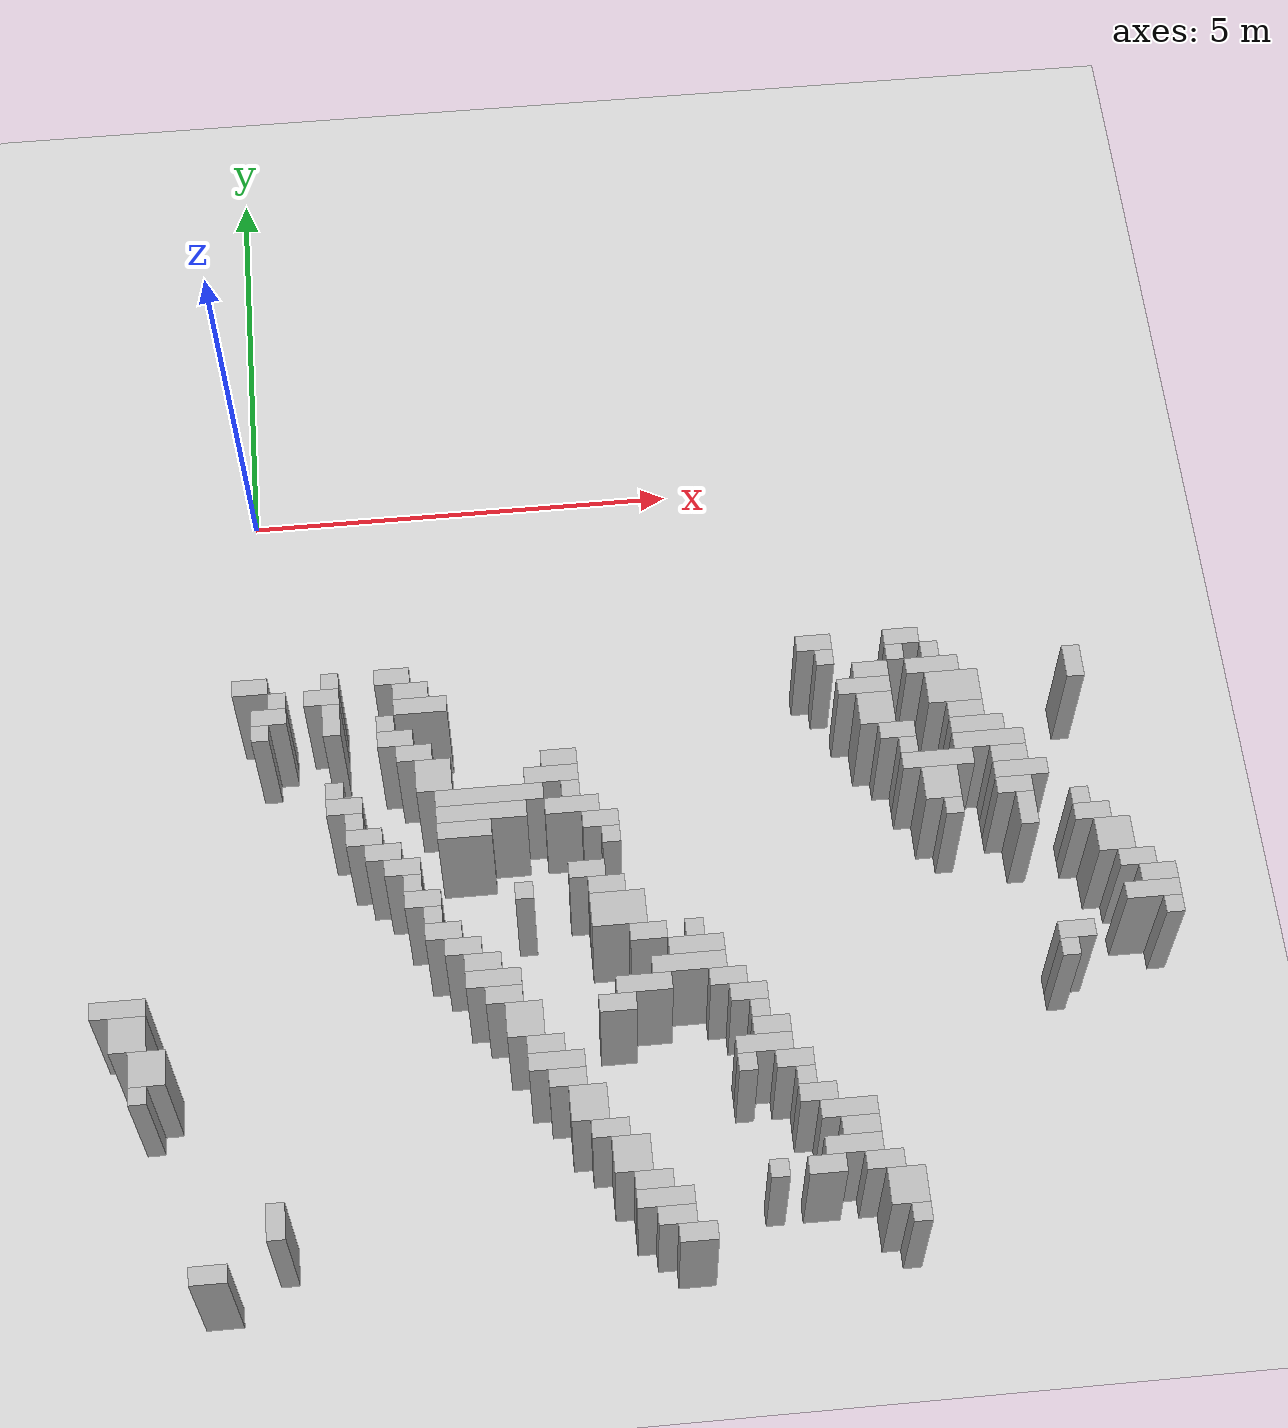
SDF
<sdf version="1.6">
 <world name="real_map">
  <include><uri>model://sun</uri></include>
  <include><uri>model://ground_plane</uri></include>
  <model name="w35">
   <static>true</static>
   <pose>0.90 -3.10 0.8 0 0 0</pose>
   <link name="l">
    <collision name="c"><geometry><box><size>0.20 0.20 1.5</size></box></geometry></collision>
    <visual name="v">
     <geometry><box><size>0.20 0.20 1.5</size></box></geometry>
     <material><ambient>0.7 0.7 0.7 1</ambient></material>
    </visual>
   </link>
  </model>
  <model name="w39">
   <static>true</static>
   <pose>1.60 -3.10 0.8 0 0 0</pose>
   <link name="l">
    <collision name="c"><geometry><box><size>0.40 0.20 1.5</size></box></geometry></collision>
    <visual name="v">
     <geometry><box><size>0.40 0.20 1.5</size></box></geometry>
     <material><ambient>0.7 0.7 0.7 1</ambient></material>
    </visual>
   </link>
  </model>
  <model name="w40">
   <static>true</static>
   <pose>7.00 -3.50 0.8 0 0 0</pose>
   <link name="l">
    <collision name="c"><geometry><box><size>0.40 0.20 1.5</size></box></geometry></collision>
    <visual name="v">
     <geometry><box><size>0.40 0.20 1.5</size></box></geometry>
     <material><ambient>0.7 0.7 0.7 1</ambient></material>
    </visual>
   </link>
  </model>
  <model name="w41">
   <static>true</static>
   <pose>1.80 -3.30 0.8 0 0 0</pose>
   <link name="l">
    <collision name="c"><geometry><box><size>0.40 0.20 1.5</size></box></geometry></collision>
    <visual name="v">
     <geometry><box><size>0.40 0.20 1.5</size></box></geometry>
     <material><ambient>0.7 0.7 0.7 1</ambient></material>
    </visual>
   </link>
  </model>
  <model name="w44">
   <static>true</static>
   <pose>0.90 -3.60 0.8 0 0 0</pose>
   <link name="l">
    <collision name="c"><geometry><box><size>0.20 0.40 1.5</size></box></geometry></collision>
    <visual name="v">
     <geometry><box><size>0.20 0.40 1.5</size></box></geometry>
     <material><ambient>0.7 0.7 0.7 1</ambient></material>
    </visual>
   </link>
  </model>
  <model name="w45">
   <static>true</static>
   <pose>7.30 -3.30 0.8 0 0 0</pose>
   <link name="l">
    <collision name="c"><geometry><box><size>0.20 0.20 1.5</size></box></geometry></collision>
    <visual name="v">
     <geometry><box><size>0.20 0.20 1.5</size></box></geometry>
     <material><ambient>0.7 0.7 0.7 1</ambient></material>
    </visual>
   </link>
  </model>
  <model name="w56">
   <static>true</static>
   <pose>8.40 -4.70 0.8 0 0 0</pose>
   <link name="l">
    <collision name="c"><geometry><box><size>0.40 0.20 1.5</size></box></geometry></collision>
    <visual name="v">
     <geometry><box><size>0.40 0.20 1.5</size></box></geometry>
     <material><ambient>0.7 0.7 0.7 1</ambient></material>
    </visual>
   </link>
  </model>
  <model name="w59">
   <static>true</static>
   <pose>7.70 -3.30 0.8 0 0 0</pose>
   <link name="l">
    <collision name="c"><geometry><box><size>0.20 0.20 1.5</size></box></geometry></collision>
    <visual name="v">
     <geometry><box><size>0.20 0.20 1.5</size></box></geometry>
     <material><ambient>0.7 0.7 0.7 1</ambient></material>
    </visual>
   </link>
  </model>
  <model name="w61">
   <static>true</static>
   <pose>1.60 -3.90 0.8 0 0 0</pose>
   <link name="l">
    <collision name="c"><geometry><box><size>0.40 0.20 1.5</size></box></geometry></collision>
    <visual name="v">
     <geometry><box><size>0.40 0.20 1.5</size></box></geometry>
     <material><ambient>0.7 0.7 0.7 1</ambient></material>
    </visual>
   </link>
  </model>
  <model name="w64">
   <static>true</static>
   <pose>1.80 -4.10 0.8 0 0 0</pose>
   <link name="l">
    <collision name="c"><geometry><box><size>0.40 0.20 1.5</size></box></geometry></collision>
    <visual name="v">
     <geometry><box><size>0.40 0.20 1.5</size></box></geometry>
     <material><ambient>0.7 0.7 0.7 1</ambient></material>
    </visual>
   </link>
  </model>
  <model name="w65">
   <static>true</static>
   <pose>3.80 -5.10 0.8 0 0 0</pose>
   <link name="l">
    <collision name="c"><geometry><box><size>0.40 0.20 1.5</size></box></geometry></collision>
    <visual name="v">
     <geometry><box><size>0.40 0.20 1.5</size></box></geometry>
     <material><ambient>0.7 0.7 0.7 1</ambient></material>
    </visual>
   </link>
  </model>
  <model name="w67">
   <static>true</static>
   <pose>2.00 -4.40 0.8 0 0 0</pose>
   <link name="l">
    <collision name="c"><geometry><box><size>0.40 0.40 1.5</size></box></geometry></collision>
    <visual name="v">
     <geometry><box><size>0.40 0.40 1.5</size></box></geometry>
     <material><ambient>0.7 0.7 0.7 1</ambient></material>
    </visual>
   </link>
  </model>
  <model name="w80">
   <static>true</static>
   <pose>3.80 -5.90 0.8 0 0 0</pose>
   <link name="l">
    <collision name="c"><geometry><box><size>0.40 0.20 1.5</size></box></geometry></collision>
    <visual name="v">
     <geometry><box><size>0.40 0.20 1.5</size></box></geometry>
     <material><ambient>0.7 0.7 0.7 1</ambient></material>
    </visual>
   </link>
  </model>
  <model name="w93">
   <static>true</static>
   <pose>3.40 -4.30 0.8 0 0 0</pose>
   <link name="l">
    <collision name="c"><geometry><box><size>0.40 0.20 1.5</size></box></geometry></collision>
    <visual name="v">
     <geometry><box><size>0.40 0.20 1.5</size></box></geometry>
     <material><ambient>0.7 0.7 0.7 1</ambient></material>
    </visual>
   </link>
  </model>
  <model name="w98">
   <static>true</static>
   <pose>3.60 -5.70 0.8 0 0 0</pose>
   <link name="l">
    <collision name="c"><geometry><box><size>0.40 0.20 1.5</size></box></geometry></collision>
    <visual name="v">
     <geometry><box><size>0.40 0.20 1.5</size></box></geometry>
     <material><ambient>0.7 0.7 0.7 1</ambient></material>
    </visual>
   </link>
  </model>
  <model name="w101">
   <static>true</static>
   <pose>3.80 -7.30 0.8 0 0 0</pose>
   <link name="l">
    <collision name="c"><geometry><box><size>0.40 0.20 1.5</size></box></geometry></collision>
    <visual name="v">
     <geometry><box><size>0.40 0.20 1.5</size></box></geometry>
     <material><ambient>0.7 0.7 0.7 1</ambient></material>
    </visual>
   </link>
  </model>
  <model name="w104">
   <static>true</static>
   <pose>6.10 -8.70 0.8 0 0 0</pose>
   <link name="l">
    <collision name="c"><geometry><box><size>0.60 0.20 1.5</size></box></geometry></collision>
    <visual name="v">
     <geometry><box><size>0.60 0.20 1.5</size></box></geometry>
     <material><ambient>0.7 0.7 0.7 1</ambient></material>
    </visual>
   </link>
  </model>
  <model name="w106">
   <static>true</static>
   <pose>0.10 -3.70 0.8 0 0 0</pose>
   <link name="l">
    <collision name="c"><geometry><box><size>0.20 0.20 1.5</size></box></geometry></collision>
    <visual name="v">
     <geometry><box><size>0.20 0.20 1.5</size></box></geometry>
     <material><ambient>0.7 0.7 0.7 1</ambient></material>
    </visual>
   </link>
  </model>
  <model name="w107">
   <static>true</static>
   <pose>5.30 -7.50 0.8 0 0 0</pose>
   <link name="l">
    <collision name="c"><geometry><box><size>0.20 0.20 1.5</size></box></geometry></collision>
    <visual name="v">
     <geometry><box><size>0.20 0.20 1.5</size></box></geometry>
     <material><ambient>0.7 0.7 0.7 1</ambient></material>
    </visual>
   </link>
  </model>
  <model name="w108">
   <static>true</static>
   <pose>5.80 -8.50 0.8 0 0 0</pose>
   <link name="l">
    <collision name="c"><geometry><box><size>0.40 0.20 1.5</size></box></geometry></collision>
    <visual name="v">
     <geometry><box><size>0.40 0.20 1.5</size></box></geometry>
     <material><ambient>0.7 0.7 0.7 1</ambient></material>
    </visual>
   </link>
  </model>
  <model name="w109">
   <static>true</static>
   <pose>6.40 -3.10 0.8 0 0 0</pose>
   <link name="l">
    <collision name="c"><geometry><box><size>0.40 0.20 1.5</size></box></geometry></collision>
    <visual name="v">
     <geometry><box><size>0.40 0.20 1.5</size></box></geometry>
     <material><ambient>0.7 0.7 0.7 1</ambient></material>
    </visual>
   </link>
  </model>
  <model name="w110">
   <static>true</static>
   <pose>4.10 -7.10 0.8 0 0 0</pose>
   <link name="l">
    <collision name="c"><geometry><box><size>0.60 0.20 1.5</size></box></geometry></collision>
    <visual name="v">
     <geometry><box><size>0.60 0.20 1.5</size></box></geometry>
     <material><ambient>0.7 0.7 0.7 1</ambient></material>
    </visual>
   </link>
  </model>
  <model name="w111">
   <static>true</static>
   <pose>4.20 -6.50 0.8 0 0 0</pose>
   <link name="l">
    <collision name="c"><geometry><box><size>0.40 0.20 1.5</size></box></geometry></collision>
    <visual name="v">
     <geometry><box><size>0.40 0.20 1.5</size></box></geometry>
     <material><ambient>0.7 0.7 0.7 1</ambient></material>
    </visual>
   </link>
  </model>
  <model name="w113">
   <static>true</static>
   <pose>9.80 -6.30 0.8 0 0 0</pose>
   <link name="l">
    <collision name="c"><geometry><box><size>0.40 0.20 1.5</size></box></geometry></collision>
    <visual name="v">
     <geometry><box><size>0.40 0.20 1.5</size></box></geometry>
     <material><ambient>0.7 0.7 0.7 1</ambient></material>
    </visual>
   </link>
  </model>
  <model name="w114">
   <static>true</static>
   <pose>9.90 -6.70 0.8 0 0 0</pose>
   <link name="l">
    <collision name="c"><geometry><box><size>0.20 0.20 1.5</size></box></geometry></collision>
    <visual name="v">
     <geometry><box><size>0.20 0.20 1.5</size></box></geometry>
     <material><ambient>0.7 0.7 0.7 1</ambient></material>
    </visual>
   </link>
  </model>
  <model name="w115">
   <static>true</static>
   <pose>7.00 -4.00 0.8 0 0 0</pose>
   <link name="l">
    <collision name="c"><geometry><box><size>0.40 0.40 1.5</size></box></geometry></collision>
    <visual name="v">
     <geometry><box><size>0.40 0.40 1.5</size></box></geometry>
     <material><ambient>0.7 0.7 0.7 1</ambient></material>
    </visual>
   </link>
  </model>
  <model name="w117">
   <static>true</static>
   <pose>6.90 -3.70 0.8 0 0 0</pose>
   <link name="l">
    <collision name="c"><geometry><box><size>0.60 0.20 1.5</size></box></geometry></collision>
    <visual name="v">
     <geometry><box><size>0.60 0.20 1.5</size></box></geometry>
     <material><ambient>0.7 0.7 0.7 1</ambient></material>
    </visual>
   </link>
  </model>
  <model name="w119">
   <static>true</static>
   <pose>7.90 -3.80 0.8 0 0 0</pose>
   <link name="l">
    <collision name="c"><geometry><box><size>0.60 0.40 1.5</size></box></geometry></collision>
    <visual name="v">
     <geometry><box><size>0.60 0.40 1.5</size></box></geometry>
     <material><ambient>0.7 0.7 0.7 1</ambient></material>
    </visual>
   </link>
  </model>
  <model name="w122">
   <static>true</static>
   <pose>7.40 -3.10 0.8 0 0 0</pose>
   <link name="l">
    <collision name="c"><geometry><box><size>0.40 0.20 1.5</size></box></geometry></collision>
    <visual name="v">
     <geometry><box><size>0.40 0.20 1.5</size></box></geometry>
     <material><ambient>0.7 0.7 0.7 1</ambient></material>
    </visual>
   </link>
  </model>
  <model name="w124">
   <static>true</static>
   <pose>8.50 -4.90 0.8 0 0 0</pose>
   <link name="l">
    <collision name="c"><geometry><box><size>0.60 0.20 1.5</size></box></geometry></collision>
    <visual name="v">
     <geometry><box><size>0.60 0.20 1.5</size></box></geometry>
     <material><ambient>0.7 0.7 0.7 1</ambient></material>
    </visual>
   </link>
  </model>
  <model name="w125">
   <static>true</static>
   <pose>7.60 -5.00 0.8 0 0 0</pose>
   <link name="l">
    <collision name="c"><geometry><box><size>0.40 0.40 1.5</size></box></geometry></collision>
    <visual name="v">
     <geometry><box><size>0.40 0.40 1.5</size></box></geometry>
     <material><ambient>0.7 0.7 0.7 1</ambient></material>
    </visual>
   </link>
  </model>
  <model name="w127">
   <static>true</static>
   <pose>7.70 -5.30 0.8 0 0 0</pose>
   <link name="l">
    <collision name="c"><geometry><box><size>0.20 0.20 1.5</size></box></geometry></collision>
    <visual name="v">
     <geometry><box><size>0.20 0.20 1.5</size></box></geometry>
     <material><ambient>0.7 0.7 0.7 1</ambient></material>
    </visual>
   </link>
  </model>
  <model name="w130">
   <static>true</static>
   <pose>7.60 -4.70 0.8 0 0 0</pose>
   <link name="l">
    <collision name="c"><geometry><box><size>0.80 0.20 1.5</size></box></geometry></collision>
    <visual name="v">
     <geometry><box><size>0.80 0.20 1.5</size></box></geometry>
     <material><ambient>0.7 0.7 0.7 1</ambient></material>
    </visual>
   </link>
  </model>
  <model name="w150">
   <static>true</static>
   <pose>5.30 -7.90 0.8 0 0 0</pose>
   <link name="l">
    <collision name="c"><geometry><box><size>0.60 0.20 1.5</size></box></geometry></collision>
    <visual name="v">
     <geometry><box><size>0.60 0.20 1.5</size></box></geometry>
     <material><ambient>0.7 0.7 0.7 1</ambient></material>
    </visual>
   </link>
  </model>
  <model name="w153">
   <static>true</static>
   <pose>5.10 -8.10 0.8 0 0 0</pose>
   <link name="l">
    <collision name="c"><geometry><box><size>0.20 0.20 1.5</size></box></geometry></collision>
    <visual name="v">
     <geometry><box><size>0.20 0.20 1.5</size></box></geometry>
     <material><ambient>0.7 0.7 0.7 1</ambient></material>
    </visual>
   </link>
  </model>
  <model name="w155">
   <static>true</static>
   <pose>3.50 -4.90 0.8 0 0 0</pose>
   <link name="l">
    <collision name="c"><geometry><box><size>0.60 0.20 1.5</size></box></geometry></collision>
    <visual name="v">
     <geometry><box><size>0.60 0.20 1.5</size></box></geometry>
     <material><ambient>0.7 0.7 0.7 1</ambient></material>
    </visual>
   </link>
  </model>
  <model name="w156">
   <static>true</static>
   <pose>4.20 -9.70 0.8 0 0 0</pose>
   <link name="l">
    <collision name="c"><geometry><box><size>0.40 0.20 1.5</size></box></geometry></collision>
    <visual name="v">
     <geometry><box><size>0.40 0.20 1.5</size></box></geometry>
     <material><ambient>0.7 0.7 0.7 1</ambient></material>
    </visual>
   </link>
  </model>
  <model name="w161">
   <static>true</static>
   <pose>3.50 -4.70 0.8 0 0 0</pose>
   <link name="l">
    <collision name="c"><geometry><box><size>0.20 0.20 1.5</size></box></geometry></collision>
    <visual name="v">
     <geometry><box><size>0.20 0.20 1.5</size></box></geometry>
     <material><ambient>0.7 0.7 0.7 1</ambient></material>
    </visual>
   </link>
  </model>
  <model name="w165">
   <static>true</static>
   <pose>1.10 -4.90 0.8 0 0 0</pose>
   <link name="l">
    <collision name="c"><geometry><box><size>0.20 0.20 1.5</size></box></geometry></collision>
    <visual name="v">
     <geometry><box><size>0.20 0.20 1.5</size></box></geometry>
     <material><ambient>0.7 0.7 0.7 1</ambient></material>
    </visual>
   </link>
  </model>
  <model name="w167">
   <static>true</static>
   <pose>2.80 -7.40 0.8 0 0 0</pose>
   <link name="l">
    <collision name="c"><geometry><box><size>0.40 0.40 1.5</size></box></geometry></collision>
    <visual name="v">
     <geometry><box><size>0.40 0.40 1.5</size></box></geometry>
     <material><ambient>0.7 0.7 0.7 1</ambient></material>
    </visual>
   </link>
  </model>
  <model name="w170">
   <static>true</static>
   <pose>9.70 -6.50 0.8 0 0 0</pose>
   <link name="l">
    <collision name="c"><geometry><box><size>0.60 0.20 1.5</size></box></geometry></collision>
    <visual name="v">
     <geometry><box><size>0.60 0.20 1.5</size></box></geometry>
     <material><ambient>0.7 0.7 0.7 1</ambient></material>
    </visual>
   </link>
  </model>
  <model name="w171">
   <static>true</static>
   <pose>1.20 -5.10 0.8 0 0 0</pose>
   <link name="l">
    <collision name="c"><geometry><box><size>0.40 0.20 1.5</size></box></geometry></collision>
    <visual name="v">
     <geometry><box><size>0.40 0.20 1.5</size></box></geometry>
     <material><ambient>0.7 0.7 0.7 1</ambient></material>
    </visual>
   </link>
  </model>
  <model name="w172">
   <static>true</static>
   <pose>1.80 -5.90 0.8 0 0 0</pose>
   <link name="l">
    <collision name="c"><geometry><box><size>0.40 0.20 1.5</size></box></geometry></collision>
    <visual name="v">
     <geometry><box><size>0.40 0.20 1.5</size></box></geometry>
     <material><ambient>0.7 0.7 0.7 1</ambient></material>
    </visual>
   </link>
  </model>
  <model name="w173">
   <static>true</static>
   <pose>1.00 -4.70 0.8 0 0 0</pose>
   <link name="l">
    <collision name="c"><geometry><box><size>0.40 0.20 1.5</size></box></geometry></collision>
    <visual name="v">
     <geometry><box><size>0.40 0.20 1.5</size></box></geometry>
     <material><ambient>0.7 0.7 0.7 1</ambient></material>
    </visual>
   </link>
  </model>
  <model name="w183">
   <static>true</static>
   <pose>6.50 -3.30 0.8 0 0 0</pose>
   <link name="l">
    <collision name="c"><geometry><box><size>0.20 0.20 1.5</size></box></geometry></collision>
    <visual name="v">
     <geometry><box><size>0.20 0.20 1.5</size></box></geometry>
     <material><ambient>0.7 0.7 0.7 1</ambient></material>
    </visual>
   </link>
  </model>
  <model name="w194">
   <static>true</static>
   <pose>5.60 -8.10 0.8 0 0 0</pose>
   <link name="l">
    <collision name="c"><geometry><box><size>0.40 0.20 1.5</size></box></geometry></collision>
    <visual name="v">
     <geometry><box><size>0.40 0.20 1.5</size></box></geometry>
     <material><ambient>0.7 0.7 0.7 1</ambient></material>
    </visual>
   </link>
  </model>
  <model name="w206">
   <static>true</static>
   <pose>5.70 -8.30 0.8 0 0 0</pose>
   <link name="l">
    <collision name="c"><geometry><box><size>0.20 0.20 1.5</size></box></geometry></collision>
    <visual name="v">
     <geometry><box><size>0.20 0.20 1.5</size></box></geometry>
     <material><ambient>0.7 0.7 0.7 1</ambient></material>
    </visual>
   </link>
  </model>
  <model name="w216">
   <static>true</static>
   <pose>5.00 -7.10 0.8 0 0 0</pose>
   <link name="l">
    <collision name="c"><geometry><box><size>0.40 0.20 1.5</size></box></geometry></collision>
    <visual name="v">
     <geometry><box><size>0.40 0.20 1.5</size></box></geometry>
     <material><ambient>0.7 0.7 0.7 1</ambient></material>
    </visual>
   </link>
  </model>
  <model name="w220">
   <static>true</static>
   <pose>5.20 -7.30 0.8 0 0 0</pose>
   <link name="l">
    <collision name="c"><geometry><box><size>0.40 0.20 1.5</size></box></geometry></collision>
    <visual name="v">
     <geometry><box><size>0.40 0.20 1.5</size></box></geometry>
     <material><ambient>0.7 0.7 0.7 1</ambient></material>
    </visual>
   </link>
  </model>
  <model name="w221">
   <static>true</static>
   <pose>7.30 -4.50 0.8 0 0 0</pose>
   <link name="l">
    <collision name="c"><geometry><box><size>0.20 0.20 1.5</size></box></geometry></collision>
    <visual name="v">
     <geometry><box><size>0.20 0.20 1.5</size></box></geometry>
     <material><ambient>0.7 0.7 0.7 1</ambient></material>
    </visual>
   </link>
  </model>
  <model name="w230">
   <static>true</static>
   <pose>8.00 -4.10 0.8 0 0 0</pose>
   <link name="l">
    <collision name="c"><geometry><box><size>0.40 0.20 1.5</size></box></geometry></collision>
    <visual name="v">
     <geometry><box><size>0.40 0.20 1.5</size></box></geometry>
     <material><ambient>0.7 0.7 0.7 1</ambient></material>
    </visual>
   </link>
  </model>
  <model name="w234">
   <static>true</static>
   <pose>6.70 -9.90 0.8 0 0 0</pose>
   <link name="l">
    <collision name="c"><geometry><box><size>0.20 0.20 1.5</size></box></geometry></collision>
    <visual name="v">
     <geometry><box><size>0.20 0.20 1.5</size></box></geometry>
     <material><ambient>0.7 0.7 0.7 1</ambient></material>
    </visual>
   </link>
  </model>
  <model name="w239">
   <static>true</static>
   <pose>8.10 -4.30 0.8 0 0 0</pose>
   <link name="l">
    <collision name="c"><geometry><box><size>0.60 0.20 1.5</size></box></geometry></collision>
    <visual name="v">
     <geometry><box><size>0.60 0.20 1.5</size></box></geometry>
     <material><ambient>0.7 0.7 0.7 1</ambient></material>
    </visual>
   </link>
  </model>
  <model name="w241">
   <static>true</static>
   <pose>5.80 -9.30 0.8 0 0 0</pose>
   <link name="l">
    <collision name="c"><geometry><box><size>0.40 0.20 1.5</size></box></geometry></collision>
    <visual name="v">
     <geometry><box><size>0.40 0.20 1.5</size></box></geometry>
     <material><ambient>0.7 0.7 0.7 1</ambient></material>
    </visual>
   </link>
  </model>
  <model name="w242">
   <static>true</static>
   <pose>8.20 -4.50 0.8 0 0 0</pose>
   <link name="l">
    <collision name="c"><geometry><box><size>0.80 0.20 1.5</size></box></geometry></collision>
    <visual name="v">
     <geometry><box><size>0.80 0.20 1.5</size></box></geometry>
     <material><ambient>0.7 0.7 0.7 1</ambient></material>
    </visual>
   </link>
  </model>
  <model name="w243">
   <static>true</static>
   <pose>6.10 -9.10 0.8 0 0 0</pose>
   <link name="l">
    <collision name="c"><geometry><box><size>0.60 0.20 1.5</size></box></geometry></collision>
    <visual name="v">
     <geometry><box><size>0.60 0.20 1.5</size></box></geometry>
     <material><ambient>0.7 0.7 0.7 1</ambient></material>
    </visual>
   </link>
  </model>
  <model name="w246">
   <static>true</static>
   <pose>1.40 -5.30 0.8 0 0 0</pose>
   <link name="l">
    <collision name="c"><geometry><box><size>0.40 0.20 1.5</size></box></geometry></collision>
    <visual name="v">
     <geometry><box><size>0.40 0.20 1.5</size></box></geometry>
     <material><ambient>0.7 0.7 0.7 1</ambient></material>
    </visual>
   </link>
  </model>
  <model name="w247">
   <static>true</static>
   <pose>6.20 -8.90 0.8 0 0 0</pose>
   <link name="l">
    <collision name="c"><geometry><box><size>0.40 0.20 1.5</size></box></geometry></collision>
    <visual name="v">
     <geometry><box><size>0.40 0.20 1.5</size></box></geometry>
     <material><ambient>0.7 0.7 0.7 1</ambient></material>
    </visual>
   </link>
  </model>
  <model name="w248">
   <static>true</static>
   <pose>0.20 -3.50 0.8 0 0 0</pose>
   <link name="l">
    <collision name="c"><geometry><box><size>0.40 0.20 1.5</size></box></geometry></collision>
    <visual name="v">
     <geometry><box><size>0.40 0.20 1.5</size></box></geometry>
     <material><ambient>0.7 0.7 0.7 1</ambient></material>
    </visual>
   </link>
  </model>
  <model name="w250">
   <static>true</static>
   <pose>2.60 -7.10 0.8 0 0 0</pose>
   <link name="l">
    <collision name="c"><geometry><box><size>0.40 0.20 1.5</size></box></geometry></collision>
    <visual name="v">
     <geometry><box><size>0.40 0.20 1.5</size></box></geometry>
     <material><ambient>0.7 0.7 0.7 1</ambient></material>
    </visual>
   </link>
  </model>
  <model name="w252">
   <static>true</static>
   <pose>0.00 -3.10 0.8 0 0 0</pose>
   <link name="l">
    <collision name="c"><geometry><box><size>0.40 0.20 1.5</size></box></geometry></collision>
    <visual name="v">
     <geometry><box><size>0.40 0.20 1.5</size></box></geometry>
     <material><ambient>0.7 0.7 0.7 1</ambient></material>
    </visual>
   </link>
  </model>
  <model name="w253">
   <static>true</static>
   <pose>0.90 -4.50 0.8 0 0 0</pose>
   <link name="l">
    <collision name="c"><geometry><box><size>0.20 0.20 1.5</size></box></geometry></collision>
    <visual name="v">
     <geometry><box><size>0.20 0.20 1.5</size></box></geometry>
     <material><ambient>0.7 0.7 0.7 1</ambient></material>
    </visual>
   </link>
  </model>
  <model name="w254">
   <static>true</static>
   <pose>1.60 -5.50 0.8 0 0 0</pose>
   <link name="l">
    <collision name="c"><geometry><box><size>0.40 0.20 1.5</size></box></geometry></collision>
    <visual name="v">
     <geometry><box><size>0.40 0.20 1.5</size></box></geometry>
     <material><ambient>0.7 0.7 0.7 1</ambient></material>
    </visual>
   </link>
  </model>
  <model name="w255">
   <static>true</static>
   <pose>6.40 -9.30 0.8 0 0 0</pose>
   <link name="l">
    <collision name="c"><geometry><box><size>0.40 0.20 1.5</size></box></geometry></collision>
    <visual name="v">
     <geometry><box><size>0.40 0.20 1.5</size></box></geometry>
     <material><ambient>0.7 0.7 0.7 1</ambient></material>
    </visual>
   </link>
  </model>
  <model name="w256">
   <static>true</static>
   <pose>0.30 -3.30 0.8 0 0 0</pose>
   <link name="l">
    <collision name="c"><geometry><box><size>0.20 0.20 1.5</size></box></geometry></collision>
    <visual name="v">
     <geometry><box><size>0.20 0.20 1.5</size></box></geometry>
     <material><ambient>0.7 0.7 0.7 1</ambient></material>
    </visual>
   </link>
  </model>
  <model name="w257">
   <static>true</static>
   <pose>0.80 -3.30 0.8 0 0 0</pose>
   <link name="l">
    <collision name="c"><geometry><box><size>0.40 0.20 1.5</size></box></geometry></collision>
    <visual name="v">
     <geometry><box><size>0.40 0.20 1.5</size></box></geometry>
     <material><ambient>0.7 0.7 0.7 1</ambient></material>
    </visual>
   </link>
  </model>
  <model name="w258">
   <static>true</static>
   <pose>1.90 -3.50 0.8 0 0 0</pose>
   <link name="l">
    <collision name="c"><geometry><box><size>0.60 0.20 1.5</size></box></geometry></collision>
    <visual name="v">
     <geometry><box><size>0.60 0.20 1.5</size></box></geometry>
     <material><ambient>0.7 0.7 0.7 1</ambient></material>
    </visual>
   </link>
  </model>
  <model name="w259">
   <static>true</static>
   <pose>7.70 -3.50 0.8 0 0 0</pose>
   <link name="l">
    <collision name="c"><geometry><box><size>0.60 0.20 1.5</size></box></geometry></collision>
    <visual name="v">
     <geometry><box><size>0.60 0.20 1.5</size></box></geometry>
     <material><ambient>0.7 0.7 0.7 1</ambient></material>
    </visual>
   </link>
  </model>
  <model name="w260">
   <static>true</static>
   <pose>9.30 -3.60 0.8 0 0 0</pose>
   <link name="l">
    <collision name="c"><geometry><box><size>0.20 0.40 1.5</size></box></geometry></collision>
    <visual name="v">
     <geometry><box><size>0.20 0.40 1.5</size></box></geometry>
     <material><ambient>0.7 0.7 0.7 1</ambient></material>
    </visual>
   </link>
  </model>
  <model name="w261">
   <static>true</static>
   <pose>0.10 -9.40 0.8 0 0 0</pose>
   <link name="l">
    <collision name="c"><geometry><box><size>0.20 0.40 1.5</size></box></geometry></collision>
    <visual name="v">
     <geometry><box><size>0.20 0.40 1.5</size></box></geometry>
     <material><ambient>0.7 0.7 0.7 1</ambient></material>
    </visual>
   </link>
  </model>
  <model name="w262">
   <static>true</static>
   <pose>1.50 -3.70 0.8 0 0 0</pose>
   <link name="l">
    <collision name="c"><geometry><box><size>0.20 0.20 1.5</size></box></geometry></collision>
    <visual name="v">
     <geometry><box><size>0.20 0.20 1.5</size></box></geometry>
     <material><ambient>0.7 0.7 0.7 1</ambient></material>
    </visual>
   </link>
  </model>
  <model name="w263">
   <static>true</static>
   <pose>2.00 -6.30 0.8 0 0 0</pose>
   <link name="l">
    <collision name="c"><geometry><box><size>0.40 0.20 1.5</size></box></geometry></collision>
    <visual name="v">
     <geometry><box><size>0.40 0.20 1.5</size></box></geometry>
     <material><ambient>0.7 0.7 0.7 1</ambient></material>
    </visual>
   </link>
  </model>
  <model name="w264">
   <static>true</static>
   <pose>3.40 -8.40 0.8 0 0 0</pose>
   <link name="l">
    <collision name="c"><geometry><box><size>0.40 0.40 1.5</size></box></geometry></collision>
    <visual name="v">
     <geometry><box><size>0.40 0.40 1.5</size></box></geometry>
     <material><ambient>0.7 0.7 0.7 1</ambient></material>
    </visual>
   </link>
  </model>
  <model name="w265">
   <static>true</static>
   <pose>7.20 -4.30 0.8 0 0 0</pose>
   <link name="l">
    <collision name="c"><geometry><box><size>0.40 0.20 1.5</size></box></geometry></collision>
    <visual name="v">
     <geometry><box><size>0.40 0.20 1.5</size></box></geometry>
     <material><ambient>0.7 0.7 0.7 1</ambient></material>
    </visual>
   </link>
  </model>
  <model name="w266">
   <static>true</static>
   <pose>3.30 -4.50 0.8 0 0 0</pose>
   <link name="l">
    <collision name="c"><geometry><box><size>0.60 0.20 1.5</size></box></geometry></collision>
    <visual name="v">
     <geometry><box><size>0.60 0.20 1.5</size></box></geometry>
     <material><ambient>0.7 0.7 0.7 1</ambient></material>
    </visual>
   </link>
  </model>
  <model name="w267">
   <static>true</static>
   <pose>2.60 -4.70 0.8 0 0 0</pose>
   <link name="l">
    <collision name="c"><geometry><box><size>1.20 0.20 1.5</size></box></geometry></collision>
    <visual name="v">
     <geometry><box><size>1.20 0.20 1.5</size></box></geometry>
     <material><ambient>0.7 0.7 0.7 1</ambient></material>
    </visual>
   </link>
  </model>
  <model name="w268">
   <static>true</static>
   <pose>8.40 -5.10 0.8 0 0 0</pose>
   <link name="l">
    <collision name="c"><geometry><box><size>0.40 0.20 1.5</size></box></geometry></collision>
    <visual name="v">
     <geometry><box><size>0.40 0.20 1.5</size></box></geometry>
     <material><ambient>0.7 0.7 0.7 1</ambient></material>
    </visual>
   </link>
  </model>
  <model name="w269">
   <static>true</static>
   <pose>2.50 -4.90 0.8 0 0 0</pose>
   <link name="l">
    <collision name="c"><geometry><box><size>1.00 0.20 1.5</size></box></geometry></collision>
    <visual name="v">
     <geometry><box><size>1.00 0.20 1.5</size></box></geometry>
     <material><ambient>0.7 0.7 0.7 1</ambient></material>
    </visual>
   </link>
  </model>
  <model name="w271">
   <static>true</static>
   <pose>2.30 -5.10 0.8 0 0 0</pose>
   <link name="l">
    <collision name="c"><geometry><box><size>0.60 0.20 1.5</size></box></geometry></collision>
    <visual name="v">
     <geometry><box><size>0.60 0.20 1.5</size></box></geometry>
     <material><ambient>0.7 0.7 0.7 1</ambient></material>
    </visual>
   </link>
  </model>
  <model name="w272">
   <static>true</static>
   <pose>3.80 -9.00 0.8 0 0 0</pose>
   <link name="l">
    <collision name="c"><geometry><box><size>0.40 0.40 1.5</size></box></geometry></collision>
    <visual name="v">
     <geometry><box><size>0.40 0.40 1.5</size></box></geometry>
     <material><ambient>0.7 0.7 0.7 1</ambient></material>
    </visual>
   </link>
  </model>
  <model name="w274">
   <static>true</static>
   <pose>3.90 -5.30 0.8 0 0 0</pose>
   <link name="l">
    <collision name="c"><geometry><box><size>0.20 0.20 1.5</size></box></geometry></collision>
    <visual name="v">
     <geometry><box><size>0.20 0.20 1.5</size></box></geometry>
     <material><ambient>0.7 0.7 0.7 1</ambient></material>
    </visual>
   </link>
  </model>
  <model name="w275">
   <static>true</static>
   <pose>8.50 -5.40 0.8 0 0 0</pose>
   <link name="l">
    <collision name="c"><geometry><box><size>0.20 0.40 1.5</size></box></geometry></collision>
    <visual name="v">
     <geometry><box><size>0.20 0.40 1.5</size></box></geometry>
     <material><ambient>0.7 0.7 0.7 1</ambient></material>
    </visual>
   </link>
  </model>
  <model name="w276">
   <static>true</static>
   <pose>9.10 -5.30 0.8 0 0 0</pose>
   <link name="l">
    <collision name="c"><geometry><box><size>0.20 0.20 1.5</size></box></geometry></collision>
    <visual name="v">
     <geometry><box><size>0.20 0.20 1.5</size></box></geometry>
     <material><ambient>0.7 0.7 0.7 1</ambient></material>
    </visual>
   </link>
  </model>
  <model name="w279">
   <static>true</static>
   <pose>9.20 -5.50 0.8 0 0 0</pose>
   <link name="l">
    <collision name="c"><geometry><box><size>0.40 0.20 1.5</size></box></geometry></collision>
    <visual name="v">
     <geometry><box><size>0.40 0.20 1.5</size></box></geometry>
     <material><ambient>0.7 0.7 0.7 1</ambient></material>
    </visual>
   </link>
  </model>
  <model name="w282">
   <static>true</static>
   <pose>1.70 -5.70 0.8 0 0 0</pose>
   <link name="l">
    <collision name="c"><geometry><box><size>0.20 0.20 1.5</size></box></geometry></collision>
    <visual name="v">
     <geometry><box><size>0.20 0.20 1.5</size></box></geometry>
     <material><ambient>0.7 0.7 0.7 1</ambient></material>
    </visual>
   </link>
  </model>
  <model name="w283">
   <static>true</static>
   <pose>3.60 -8.70 0.8 0 0 0</pose>
   <link name="l">
    <collision name="c"><geometry><box><size>0.40 0.20 1.5</size></box></geometry></collision>
    <visual name="v">
     <geometry><box><size>0.40 0.20 1.5</size></box></geometry>
     <material><ambient>0.7 0.7 0.7 1</ambient></material>
    </visual>
   </link>
  </model>
  <model name="w284">
   <static>true</static>
   <pose>9.40 -5.80 0.8 0 0 0</pose>
   <link name="l">
    <collision name="c"><geometry><box><size>0.40 0.40 1.5</size></box></geometry></collision>
    <visual name="v">
     <geometry><box><size>0.40 0.40 1.5</size></box></geometry>
     <material><ambient>0.7 0.7 0.7 1</ambient></material>
    </visual>
   </link>
  </model>
  <model name="w287">
   <static>true</static>
   <pose>2.90 -5.90 0.8 0 0 0</pose>
   <link name="l">
    <collision name="c"><geometry><box><size>0.20 0.20 1.5</size></box></geometry></collision>
    <visual name="v">
     <geometry><box><size>0.20 0.20 1.5</size></box></geometry>
     <material><ambient>0.7 0.7 0.7 1</ambient></material>
    </visual>
   </link>
  </model>
  <model name="w290">
   <static>true</static>
   <pose>1.90 -6.10 0.8 0 0 0</pose>
   <link name="l">
    <collision name="c"><geometry><box><size>0.20 0.20 1.5</size></box></geometry></collision>
    <visual name="v">
     <geometry><box><size>0.20 0.20 1.5</size></box></geometry>
     <material><ambient>0.7 0.7 0.7 1</ambient></material>
    </visual>
   </link>
  </model>
  <model name="w291">
   <static>true</static>
   <pose>3.90 -6.20 0.8 0 0 0</pose>
   <link name="l">
    <collision name="c"><geometry><box><size>0.60 0.40 1.5</size></box></geometry></collision>
    <visual name="v">
     <geometry><box><size>0.60 0.40 1.5</size></box></geometry>
     <material><ambient>0.7 0.7 0.7 1</ambient></material>
    </visual>
   </link>
  </model>
  <model name="w292">
   <static>true</static>
   <pose>9.60 -6.10 0.8 0 0 0</pose>
   <link name="l">
    <collision name="c"><geometry><box><size>0.40 0.20 1.5</size></box></geometry></collision>
    <visual name="v">
     <geometry><box><size>0.40 0.20 1.5</size></box></geometry>
     <material><ambient>0.7 0.7 0.7 1</ambient></material>
    </visual>
   </link>
  </model>
  <model name="w301">
   <static>true</static>
   <pose>2.20 -6.50 0.8 0 0 0</pose>
   <link name="l">
    <collision name="c"><geometry><box><size>0.40 0.20 1.5</size></box></geometry></collision>
    <visual name="v">
     <geometry><box><size>0.40 0.20 1.5</size></box></geometry>
     <material><ambient>0.7 0.7 0.7 1</ambient></material>
    </visual>
   </link>
  </model>
  <model name="w302">
   <static>true</static>
   <pose>4.70 -6.50 0.8 0 0 0</pose>
   <link name="l">
    <collision name="c"><geometry><box><size>0.20 0.20 1.5</size></box></geometry></collision>
    <visual name="v">
     <geometry><box><size>0.20 0.20 1.5</size></box></geometry>
     <material><ambient>0.7 0.7 0.7 1</ambient></material>
    </visual>
   </link>
  </model>
  <model name="w306">
   <static>true</static>
   <pose>2.40 -6.70 0.8 0 0 0</pose>
   <link name="l">
    <collision name="c"><geometry><box><size>0.40 0.20 1.5</size></box></geometry></collision>
    <visual name="v">
     <geometry><box><size>0.40 0.20 1.5</size></box></geometry>
     <material><ambient>0.7 0.7 0.7 1</ambient></material>
    </visual>
   </link>
  </model>
  <model name="w307">
   <static>true</static>
   <pose>4.70 -6.70 0.8 0 0 0</pose>
   <link name="l">
    <collision name="c"><geometry><box><size>0.60 0.20 1.5</size></box></geometry></collision>
    <visual name="v">
     <geometry><box><size>0.60 0.20 1.5</size></box></geometry>
     <material><ambient>0.7 0.7 0.7 1</ambient></material>
    </visual>
   </link>
  </model>
  <model name="w309">
   <static>true</static>
   <pose>-1.50 -6.90 0.8 0 0 0</pose>
   <link name="l">
    <collision name="c"><geometry><box><size>0.60 0.20 1.5</size></box></geometry></collision>
    <visual name="v">
     <geometry><box><size>0.60 0.20 1.5</size></box></geometry>
     <material><ambient>0.7 0.7 0.7 1</ambient></material>
    </visual>
   </link>
  </model>
  <model name="w310">
   <static>true</static>
   <pose>2.50 -6.90 0.8 0 0 0</pose>
   <link name="l">
    <collision name="c"><geometry><box><size>0.60 0.20 1.5</size></box></geometry></collision>
    <visual name="v">
     <geometry><box><size>0.60 0.20 1.5</size></box></geometry>
     <material><ambient>0.7 0.7 0.7 1</ambient></material>
    </visual>
   </link>
  </model>
  <model name="w311">
   <static>true</static>
   <pose>4.60 -6.90 0.8 0 0 0</pose>
   <link name="l">
    <collision name="c"><geometry><box><size>0.80 0.20 1.5</size></box></geometry></collision>
    <visual name="v">
     <geometry><box><size>0.80 0.20 1.5</size></box></geometry>
     <material><ambient>0.7 0.7 0.7 1</ambient></material>
    </visual>
   </link>
  </model>
  <model name="w312">
   <static>true</static>
   <pose>8.80 -6.90 0.8 0 0 0</pose>
   <link name="l">
    <collision name="c"><geometry><box><size>0.40 0.20 1.5</size></box></geometry></collision>
    <visual name="v">
     <geometry><box><size>0.40 0.20 1.5</size></box></geometry>
     <material><ambient>0.7 0.7 0.7 1</ambient></material>
    </visual>
   </link>
  </model>
  <model name="w313">
   <static>true</static>
   <pose>-1.40 -7.20 0.8 0 0 0</pose>
   <link name="l">
    <collision name="c"><geometry><box><size>0.40 0.40 1.5</size></box></geometry></collision>
    <visual name="v">
     <geometry><box><size>0.40 0.40 1.5</size></box></geometry>
     <material><ambient>0.7 0.7 0.7 1</ambient></material>
    </visual>
   </link>
  </model>
  <model name="w314">
   <static>true</static>
   <pose>4.10 -9.50 0.8 0 0 0</pose>
   <link name="l">
    <collision name="c"><geometry><box><size>0.60 0.20 1.5</size></box></geometry></collision>
    <visual name="v">
     <geometry><box><size>0.60 0.20 1.5</size></box></geometry>
     <material><ambient>0.7 0.7 0.7 1</ambient></material>
    </visual>
   </link>
  </model>
  <model name="w315">
   <static>true</static>
   <pose>8.70 -7.10 0.8 0 0 0</pose>
   <link name="l">
    <collision name="c"><geometry><box><size>0.20 0.20 1.5</size></box></geometry></collision>
    <visual name="v">
     <geometry><box><size>0.20 0.20 1.5</size></box></geometry>
     <material><ambient>0.7 0.7 0.7 1</ambient></material>
    </visual>
   </link>
  </model>
  <model name="w317">
   <static>true</static>
   <pose>-1.20 -7.60 0.8 0 0 0</pose>
   <link name="l">
    <collision name="c"><geometry><box><size>0.40 0.40 1.5</size></box></geometry></collision>
    <visual name="v">
     <geometry><box><size>0.40 0.40 1.5</size></box></geometry>
     <material><ambient>0.7 0.7 0.7 1</ambient></material>
    </visual>
   </link>
  </model>
  <model name="w318">
   <static>true</static>
   <pose>5.30 -9.30 0.8 0 0 0</pose>
   <link name="l">
    <collision name="c"><geometry><box><size>0.20 0.20 1.5</size></box></geometry></collision>
    <visual name="v">
     <geometry><box><size>0.20 0.20 1.5</size></box></geometry>
     <material><ambient>0.7 0.7 0.7 1</ambient></material>
    </visual>
   </link>
  </model>
  <model name="w320">
   <static>true</static>
   <pose>3.00 -7.70 0.8 0 0 0</pose>
   <link name="l">
    <collision name="c"><geometry><box><size>0.40 0.20 1.5</size></box></geometry></collision>
    <visual name="v">
     <geometry><box><size>0.40 0.20 1.5</size></box></geometry>
     <material><ambient>0.7 0.7 0.7 1</ambient></material>
    </visual>
   </link>
  </model>
  <model name="w321">
   <static>true</static>
   <pose>5.40 -7.70 0.8 0 0 0</pose>
   <link name="l">
    <collision name="c"><geometry><box><size>0.40 0.20 1.5</size></box></geometry></collision>
    <visual name="v">
     <geometry><box><size>0.40 0.20 1.5</size></box></geometry>
     <material><ambient>0.7 0.7 0.7 1</ambient></material>
    </visual>
   </link>
  </model>
  <model name="w322">
   <static>true</static>
   <pose>-1.30 -7.90 0.8 0 0 0</pose>
   <link name="l">
    <collision name="c"><geometry><box><size>0.20 0.20 1.5</size></box></geometry></collision>
    <visual name="v">
     <geometry><box><size>0.20 0.20 1.5</size></box></geometry>
     <material><ambient>0.7 0.7 0.7 1</ambient></material>
    </visual>
   </link>
  </model>
  <model name="w323">
   <static>true</static>
   <pose>3.10 -7.90 0.8 0 0 0</pose>
   <link name="l">
    <collision name="c"><geometry><box><size>0.60 0.20 1.5</size></box></geometry></collision>
    <visual name="v">
     <geometry><box><size>0.60 0.20 1.5</size></box></geometry>
     <material><ambient>0.7 0.7 0.7 1</ambient></material>
    </visual>
   </link>
  </model>
  <model name="w324">
   <static>true</static>
   <pose>3.20 -8.10 0.8 0 0 0</pose>
   <link name="l">
    <collision name="c"><geometry><box><size>0.40 0.20 1.5</size></box></geometry></collision>
    <visual name="v">
     <geometry><box><size>0.40 0.20 1.5</size></box></geometry>
     <material><ambient>0.7 0.7 0.7 1</ambient></material>
    </visual>
   </link>
  </model>
  <model name="w329">
   <static>true</static>
   <pose>4.00 -9.30 0.8 0 0 0</pose>
   <link name="l">
    <collision name="c"><geometry><box><size>0.40 0.20 1.5</size></box></geometry></collision>
    <visual name="v">
     <geometry><box><size>0.40 0.20 1.5</size></box></geometry>
     <material><ambient>0.7 0.7 0.7 1</ambient></material>
    </visual>
   </link>
  </model>
  <model name="w331">
   <static>true</static>
   <pose>6.60 -9.60 0.8 0 0 0</pose>
   <link name="l">
    <collision name="c"><geometry><box><size>0.40 0.40 1.5</size></box></geometry></collision>
    <visual name="v">
     <geometry><box><size>0.40 0.40 1.5</size></box></geometry>
     <material><ambient>0.7 0.7 0.7 1</ambient></material>
    </visual>
   </link>
  </model>
  <model name="w336">
   <static>true</static>
   <pose>-0.60 -9.90 0.8 0 0 0</pose>
   <link name="l">
    <collision name="c"><geometry><box><size>0.40 0.20 1.5</size></box></geometry></collision>
    <visual name="v">
     <geometry><box><size>0.40 0.20 1.5</size></box></geometry>
     <material><ambient>0.7 0.7 0.7 1</ambient></material>
    </visual>
   </link>
  </model>
  <model name="w337">
   <static>true</static>
   <pose>4.40 -9.90 0.8 0 0 0</pose>
   <link name="l">
    <collision name="c"><geometry><box><size>0.40 0.20 1.5</size></box></geometry></collision>
    <visual name="v">
     <geometry><box><size>0.40 0.20 1.5</size></box></geometry>
     <material><ambient>0.7 0.7 0.7 1</ambient></material>
    </visual>
   </link>
  </model>
 </world>
</sdf>
